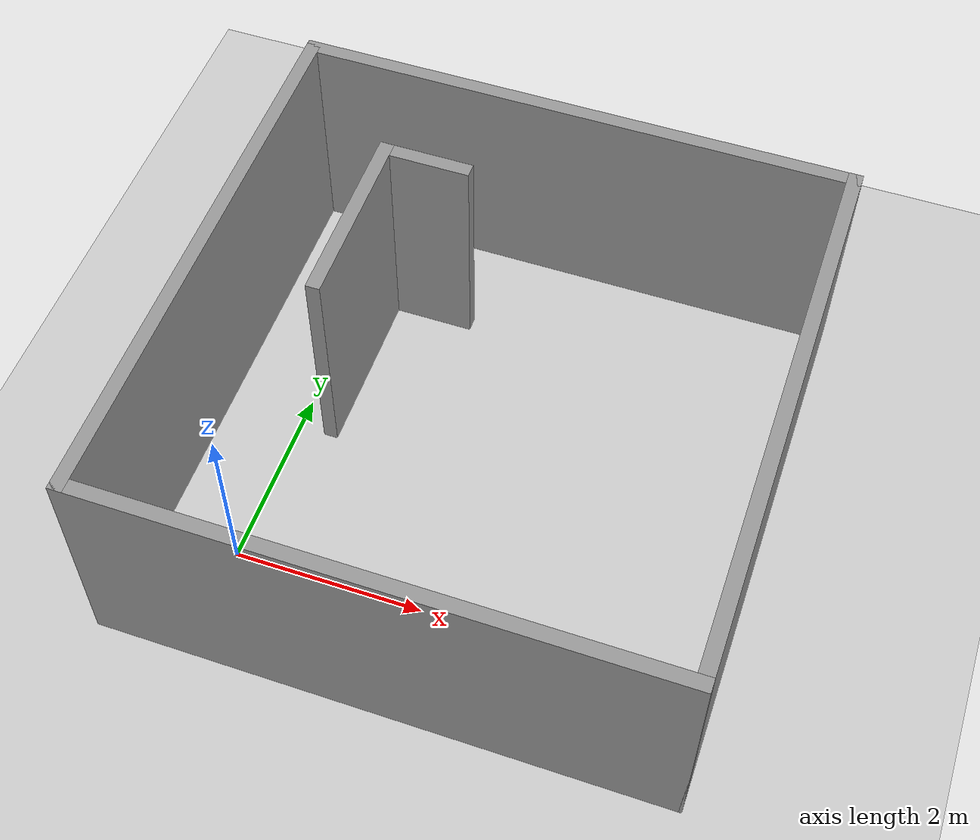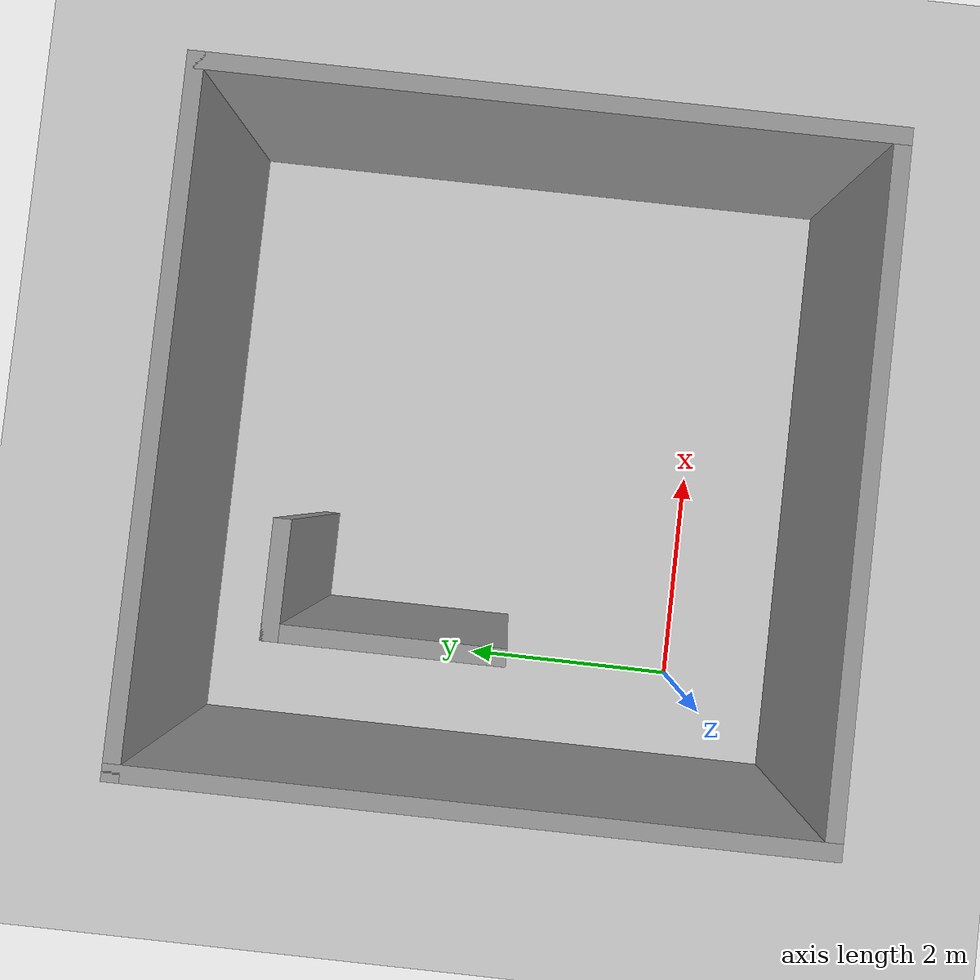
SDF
<sdf version="1.6">
 <world name="default">
  <include><uri>model://ground_plane</uri></include>
  <include><uri>model://sun</uri></include>
  <scene><shadows>false</shadows></scene>
  <physics type="ode">
   <real_time_update_rate>1000.0</real_time_update_rate>
   <max_step_size>0.001</max_step_size>
   <real_time_factor>1</real_time_factor>
   <ode>
    <solver>
     <type>quick</type>
     <iters>150</iters>
     <precon_iters>0</precon_iters>
     <sor>1.400000</sor>
     <use_dynamic_moi_rescaling>1</use_dynamic_moi_rescaling>
    </solver>
    <constraints>
     <cfm>0.00001</cfm>
     <erp>0.2</erp>
     <contact_max_correcting_vel>2000.000000</contact_max_correcting_vel>
     <contact_surface_layer>0.01000</contact_surface_layer>
    </constraints>
   </ode>
  </physics>
  <model name="practice2_world"><static>1</static><include><uri>model://practice2_world</uri></include></model>
  <plugin name="gazebo_ros_state" filename="libgazebo_ros_state.so">
   <ros><namespace>/</namespace></ros>
   <update_rate>30</update_rate>
  </plugin>
 </world>
</sdf>

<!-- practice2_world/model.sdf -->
<sdf version='1.7'>
  <model name='practice2_world'>
    <pose>2.015 1.815 0 0 -0 0</pose>
    <link name='Wall_0'>
      <collision name='Wall_0_Collision'>
        <geometry>
          <box>
            <size>6 0.15 2.5</size>
          </box>
        </geometry>
        <pose>0 0 1.25 0 -0 0</pose>
      </collision>
      <visual name='Wall_0_Visual'>
        <pose>0 0 1.25 0 -0 0</pose>
        <geometry>
          <box>
            <size>6 0.15 2.5</size>
          </box>
        </geometry>
        <material>
          <script>
            <uri>file://media/materials/scripts/gazebo.material</uri>
            <name>Gazebo/Grey</name>
          </script>
          <ambient>1 1 1 1</ambient>
        </material>
        <meta>
          <layer>0</layer>
        </meta>
      </visual>
      <pose>0 -2.925 0 0 -0 0</pose>
    </link>
    <link name='Wall_17'>
      <collision name='Wall_17_Collision'>
        <geometry>
          <box>
            <size>1 0.15 2.5</size>
          </box>
        </geometry>
        <pose>0 0 1.25 0 -0 0</pose>
      </collision>
      <visual name='Wall_17_Visual'>
        <pose>0 0 1.25 0 -0 0</pose>
        <geometry>
          <box>
            <size>1 0.15 2.5</size>
          </box>
        </geometry>
        <material>
          <script>
            <uri>file://media/materials/scripts/gazebo.material</uri>
            <name>Gazebo/Grey</name>
          </script>
          <ambient>1 1 1 1</ambient>
        </material>
        <meta>
          <layer>0</layer>
        </meta>
      </visual>
      <pose>-1.24043 1.78044 0 0 -0 0</pose>
    </link>
    <link name='Wall_19'>
      <collision name='Wall_19_Collision'>
        <geometry>
          <box>
            <size>2 0.15 2.5</size>
          </box>
        </geometry>
        <pose>0 0 1.25 0 -0 0</pose>
      </collision>
      <visual name='Wall_19_Visual'>
        <pose>0 0 1.25 0 -0 0</pose>
        <geometry>
          <box>
            <size>2 0.15 2.5</size>
          </box>
        </geometry>
        <material>
          <script>
            <uri>file://media/materials/scripts/gazebo.material</uri>
            <name>Gazebo/Grey</name>
          </script>
          <ambient>1 1 1 1</ambient>
        </material>
        <meta>
          <layer>0</layer>
        </meta>
      </visual>
      <pose>-1.66543 0.855444 0 0 -0 -1.5708</pose>
    </link>

    <link name='Wall_7'>
      <collision name='Wall_7_Collision'>
        <geometry>
          <box>
            <size>6 0.15 2.5</size>
          </box>
        </geometry>
        <pose>0 0 1.25 0 -0 0</pose>
      </collision>
      <visual name='Wall_7_Visual'>
        <pose>0 0 1.25 0 -0 0</pose>
        <geometry>
          <box>
            <size>6 0.15 2.5</size>
          </box>
        </geometry>
        <material>
          <script>
            <uri>file://media/materials/scripts/gazebo.material</uri>
            <name>Gazebo/Grey</name>
          </script>
          <ambient>1 1 1 1</ambient>
        </material>
        <meta>
          <layer>0</layer>
        </meta>
      </visual>
      <pose>-2.925 0 0 0 -0 1.5708</pose>
    </link>
    <link name='Wall_8'>
      <collision name='Wall_8_Collision'>
        <geometry>
          <box>
            <size>6 0.15 2.5</size>
          </box>
        </geometry>
        <pose>0 0 1.25 0 -0 0</pose>
      </collision>
      <visual name='Wall_8_Visual'>
        <pose>0 0 1.25 0 -0 0</pose>
        <geometry>
          <box>
            <size>6 0.15 2.5</size>
          </box>
        </geometry>
        <material>
          <script>
            <uri>file://media/materials/scripts/gazebo.material</uri>
            <name>Gazebo/Grey</name>
          </script>
          <ambient>1 1 1 1</ambient>
        </material>
        <meta>
          <layer>0</layer>
        </meta>
      </visual>
      <pose>0 2.925 0 0 -0 0</pose>
    </link>
    <link name='Wall_9'>
      <collision name='Wall_9_Collision'>
        <geometry>
          <box>
            <size>6 0.15 2.5</size>
          </box>
        </geometry>
        <pose>0 0 1.25 0 -0 0</pose>
      </collision>
      <visual name='Wall_9_Visual'>
        <pose>0 0 1.25 0 -0 0</pose>
        <geometry>
          <box>
            <size>6 0.15 2.5</size>
          </box>
        </geometry>
        <material>
          <script>
            <uri>file://media/materials/scripts/gazebo.material</uri>
            <name>Gazebo/Grey</name>
          </script>
          <ambient>1 1 1 1</ambient>
        </material>
        <meta>
          <layer>0</layer>
        </meta>
      </visual>
      <pose>2.925 0 0 0 -0 -1.5708</pose>
    </link>
    <static>1</static>
  </model>
</sdf>
